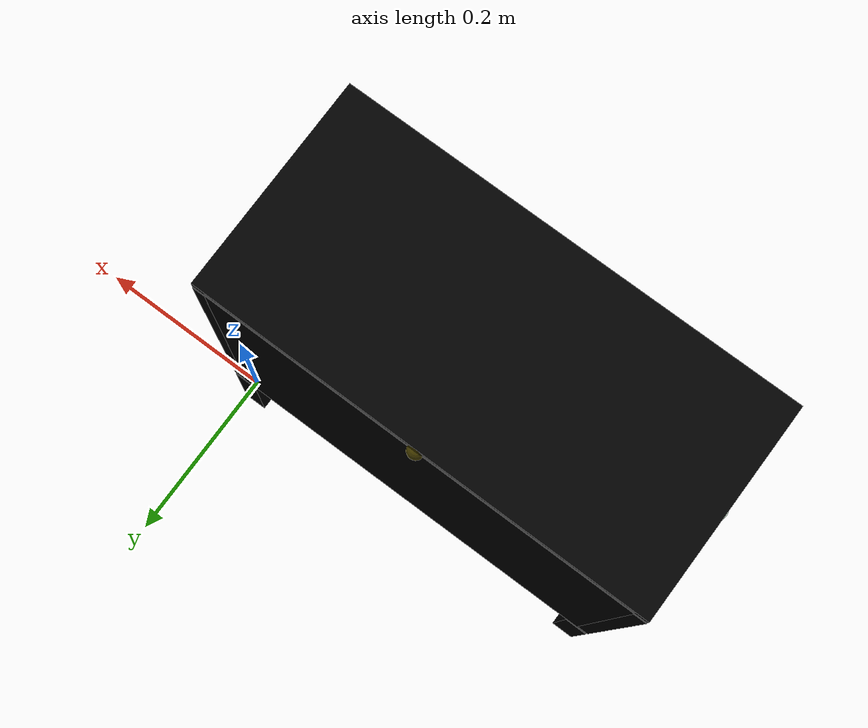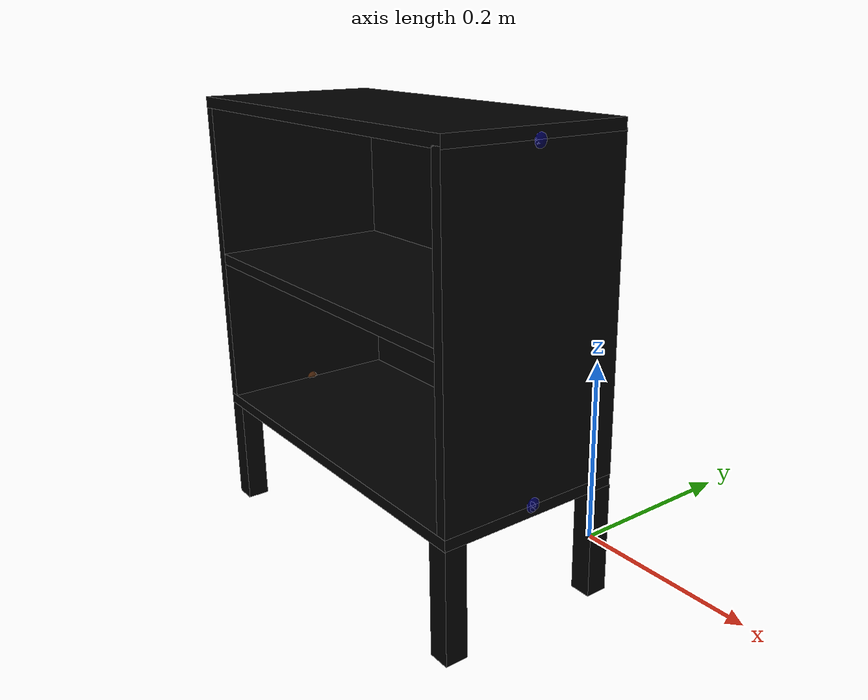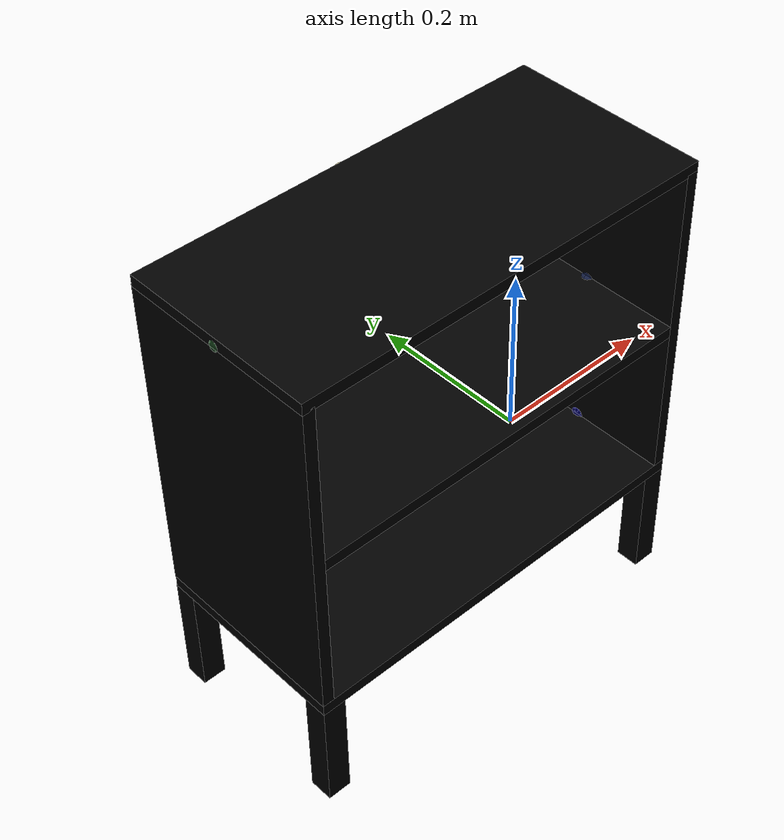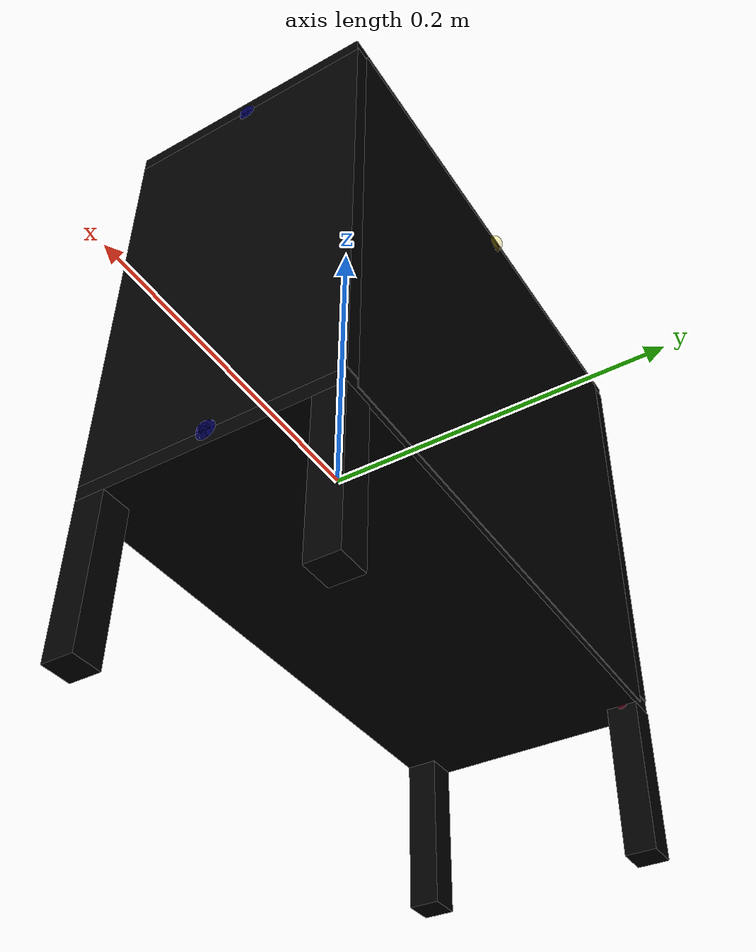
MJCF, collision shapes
<mujoco model="bookcase_agerum_0006">
  <custom>
    <numeric data="0.424249 0.27183 0.01267 0.707107 0.0 -0.707107 -0.0" name="0_part0_initpos" />
    <numeric data="0.065642 -0.058725 0.00626 0.0 1.0 0.0 0.0" name="9_part9_initpos" />
    <numeric data="-0.443256 0.052999 0.0063 0.707107 0.0 0.707107 0.0" name="8_part8_initpos" />
    <numeric data="0.521462 -0.055008 0.00632 -0.707107 -0.0 0.707107 -0.0" name="7_part7_initpos" />
    <numeric data="-0.430766 0.333003 0.00632 1.0 0.0 0.0 0.0" name="6_part6_initpos" />
    <numeric data="-0.454857 -0.310557 0.00156 0.0 0.0 -0.707107 -0.707107" name="5_part5_initpos" />
    <numeric data="0.058187 0.242598 0.0063 0.0 1.0 0.0 0.0" name="4_part4_initpos" />
    <numeric data="0.427126 0.340304 0.01267 -0.707107 0.0 0.707107 0.0" name="3_part3_initpos" />
    <numeric data="0.424231 0.179422 0.01267 0.707107 -0.0 -0.707107 0.0" name="2_part2_initpos" />
    <numeric data="0.424084 0.41124 0.01267 0.492237 -0.492237 -0.507644 0.507645" name="1_part1_initpos" />
  </custom>
  <asset>
    <mesh file="bookcase_agerum_0006/0.stl" name="part0" scale="0.0005 0.0005 0.0005" />
    <mesh file="bookcase_agerum_0006/9.stl" name="part9" scale="0.0005 0.0005 0.0005" />
    <mesh file="bookcase_agerum_0006/8.stl" name="part8" scale="0.0005 0.0005 0.0005" />
    <mesh file="bookcase_agerum_0006/7.stl" name="part7" scale="0.0005 0.0005 0.0005" />
    <mesh file="bookcase_agerum_0006/6.stl" name="part6" scale="0.0005 0.0005 0.0005" />
    <mesh file="bookcase_agerum_0006/5.stl" name="part5" scale="0.0005 0.0005 0.0005" />
    <mesh file="bookcase_agerum_0006/4.stl" name="part4" scale="0.0005 0.0005 0.0005" />
    <mesh file="bookcase_agerum_0006/3.stl" name="part3" scale="0.0005 0.0005 0.0005" />
    <mesh file="bookcase_agerum_0006/2.stl" name="part2" scale="0.0005 0.0005 0.0005" />
    <mesh file="bookcase_agerum_0006/1.stl" name="part1" scale="0.0005 0.0005 0.0005" />
  </asset>
  <equality>
    <weld active="false" body1="0_part0" body2="4_part4" solimp="1 1 0.5" solref="0.01 0.3" />
    <weld active="false" body1="9_part9" body2="8_part8" solimp="1 1 0.5" solref="0.01 0.3" />
    <weld active="false" body1="9_part9" body2="7_part7" solimp="1 1 0.5" solref="0.01 0.3" />
    <weld active="false" body1="9_part9" body2="5_part5" solimp="1 1 0.5" solref="0.01 0.3" />
    <weld active="false" body1="8_part8" body2="9_part9" solimp="1 1 0.5" solref="0.01 0.3" />
    <weld active="false" body1="8_part8" body2="6_part6" solimp="1 1 0.5" solref="0.01 0.3" />
    <weld active="false" body1="8_part8" body2="4_part4" solimp="1 1 0.5" solref="0.01 0.3" />
    <weld active="false" body1="7_part7" body2="6_part6" solimp="1 1 0.5" solref="0.01 0.3" />
    <weld active="false" body1="7_part7" body2="4_part4" solimp="1 1 0.5" solref="0.01 0.3" />
    <weld active="false" body1="6_part6" body2="5_part5" solimp="1 1 0.5" solref="0.01 0.3" />
    <weld active="false" body1="5_part5" body2="4_part4" solimp="1 1 0.5" solref="0.01 0.3" />
    <weld active="false" body1="4_part4" body2="3_part3" solimp="1 1 0.5" solref="0.01 0.3" />
    <weld active="false" body1="4_part4" body2="2_part2" solimp="1 1 0.5" solref="0.01 0.3" />
    <weld active="false" body1="4_part4" body2="1_part1" solimp="1 1 0.5" solref="0.01 0.3" />
  </equality>
  <worldbody>
    <body name="0_part0" pos="0.0 -5e-11 0.0" quat="1 0 0 0">
      <geom conaffinity="0" contype="0" density="0" mesh="part0" name="0_part0_mesh" pos="0.0 0.0 0.0" rgba="0.82 0.71 0.55 1" type="mesh" />
      <site name="0_part0_horizontal_radius_site" pos="0.0 -5e-11 0.0" quat="1 0 0 0" rgba="0 0 0 0" size="0.01" />
      <site name="0_part0_top_site" pos="0.0 -5e-11 0.0635" quat="1 0 0 0" rgba="0 0 0 0" size="0.01" />
      <site name="0_part0_bottom_site" pos="0.0 -5e-11 -0.0635" quat="1 0 0 0" rgba="0 0 0 0" size="0.01" />
      <site name="0_part0_corner_site8" pos="-0.012700000749999999 0.01270000355 0.0635" quat="1 0 0 0" rgba="0 0 0 0" size="0.008" />
      <site name="0_part0_corner_site7" pos="0.012700000749999999 0.01270000355 0.0635" quat="1 0 0 0" rgba="0 0 0 0" size="0.008" />
      <site name="0_part0_corner_site6" pos="0.012700000749999999 -0.0127000036 0.0635" quat="1 0 0 0" rgba="0 0 0 0" size="0.008" />
      <site name="0_part0_corner_site5" pos="-0.012700000749999999 -0.0127000036 0.0635" quat="1 0 0 0" rgba="0 0 0 0" size="0.008" />
      <site name="0_part0_corner_site4" pos="-0.012700000749999999 0.01270000355 -0.0635" quat="1 0 0 0" rgba="0 0 0 0" size="0.008" />
      <site name="0_part0_corner_site3" pos="0.012700000749999999 0.01270000355 -0.0635" quat="1 0 0 0" rgba="0 0 0 0" size="0.008" />
      <site name="0_part0_corner_site2" pos="0.012700000749999999 -0.0127000036 -0.0635" quat="1 0 0 0" rgba="0 0 0 0" size="0.008" />
      <site name="0_part0_corner_site1" pos="-0.012700000749999999 -0.0127000036 -0.0635" quat="1 0 0 0" rgba="0 0 0 0" size="0.008" />
      <geom density="50" name="noviz_collision_0_part0_0" pos="2E-05 0 0.00013" quat="1 0 0 0" rgba="0 0 0 0" size="0.01272 0.0127 0.06363" solref="0.001 1" type="box" />
      <site name="leg-floor,0,90,180,270,conn_site4" pos="0.0025 -0.0005 0.06479" quat="1 0 0 0" rgba="0.9019 0.0980 0.2941 0.3" size="0.008" />
    </body>
    <body name="9_part9" pos="-0.21589999635 -0.09524999645 0.43814999390000003" quat="1 0 0 0">
      <geom conaffinity="0" contype="0" density="0" mesh="part9" name="9_part9_mesh" pos="0.0 0.0 0.0" rgba="0.82 0.71 0.55 1" type="mesh" />
      <site name="9_part9_horizontal_radius_site" pos="3e-09 0.0 0.0" quat="1 0 0 0" rgba="0 0 0 0" size="0.01" />
      <site name="9_part9_top_site" pos="3e-09 0.0 0.0063500061" quat="1 0 0 0" rgba="0 0 0 0" size="0.01" />
      <site name="9_part9_bottom_site" pos="3e-09 0.0 -0.0063500061" quat="1 0 0 0" rgba="0 0 0 0" size="0.01" />
      <site name="9_part9_corner_site8" pos="-0.2286000001 0.10795 0.0063500061" quat="1 0 0 0" rgba="0 0 0 0" size="0.008" />
      <site name="9_part9_corner_site7" pos="0.2286000061 0.10795 0.0063500061" quat="1 0 0 0" rgba="0 0 0 0" size="0.008" />
      <site name="9_part9_corner_site6" pos="0.2286000061 -0.10795 0.0063500061" quat="1 0 0 0" rgba="0 0 0 0" size="0.008" />
      <site name="9_part9_corner_site5" pos="-0.2286000001 -0.10795 0.0063500061" quat="1 0 0 0" rgba="0 0 0 0" size="0.008" />
      <site name="9_part9_corner_site4" pos="-0.2286000001 0.10795 -0.0063500061" quat="1 0 0 0" rgba="0 0 0 0" size="0.008" />
      <site name="9_part9_corner_site3" pos="0.2286000061 0.10795 -0.0063500061" quat="1 0 0 0" rgba="0 0 0 0" size="0.008" />
      <site name="9_part9_corner_site2" pos="0.2286000061 -0.10795 -0.0063500061" quat="1 0 0 0" rgba="0 0 0 0" size="0.008" />
      <site name="9_part9_corner_site1" pos="-0.2286000001 -0.10795 -0.0063500061" quat="1 0 0 0" rgba="0 0 0 0" size="0.008" />
      <geom density="50" name="noviz_collision_9_part9_0" pos="0 -0.00036 -3E-05" quat="1 0 0 0" rgba="0 0 0 0" size="0.2286 0.10759 0.00632" solref="0.001 1" type="box" />
      <site name="top-leftwall,0,conn_site1" pos="-0.2228 0 -0.0037" quat="1 0 0 0" rgba="0.2352 0.7058 0.2941 0.3" size="0.008" />
      <site name="top-back,0,conn_site1" pos="0 0.10669 -0.00315" quat="1 0 0 0" rgba="1.0 0.8823 0.0980 0.3" size="0.008" />
      <site name="top-rightwall,0,180,conn_site1" pos="0.2219 0 -0.00715" quat="1 0 0 0" rgba="0 0 1 0.3" size="0.01" />
    </body>
    <body name="8_part8" pos="0.00635000055 -0.09524999645 0.2539999977" quat="1 0 0 0">
      <geom conaffinity="0" contype="0" density="0" mesh="part8" name="8_part8_mesh" pos="0.0 0.0 0.0" rgba="0.82 0.71 0.55 1" type="mesh" />
      <site name="8_part8_horizontal_radius_site" pos="-1e-10 0.0 -7.5e-10" quat="1 0 0 0" rgba="0 0 0 0" size="0.01" />
      <site name="8_part8_top_site" pos="-1e-10 0.0 0.17780000155" quat="1 0 0 0" rgba="0 0 0 0" size="0.01" />
      <site name="8_part8_bottom_site" pos="-1e-10 0.0 -0.17780000305" quat="1 0 0 0" rgba="0 0 0 0" size="0.01" />
      <site name="8_part8_corner_site8" pos="-0.0063500001 0.10795 0.17780000155" quat="1 0 0 0" rgba="0 0 0 0" size="0.008" />
      <site name="8_part8_corner_site7" pos="0.0063499999 0.10795 0.17780000155" quat="1 0 0 0" rgba="0 0 0 0" size="0.008" />
      <site name="8_part8_corner_site6" pos="0.0063499999 -0.10795 0.17780000155" quat="1 0 0 0" rgba="0 0 0 0" size="0.008" />
      <site name="8_part8_corner_site5" pos="-0.0063500001 -0.10795 0.17780000155" quat="1 0 0 0" rgba="0 0 0 0" size="0.008" />
      <site name="8_part8_corner_site4" pos="-0.0063500001 0.10795 -0.17780000305" quat="1 0 0 0" rgba="0 0 0 0" size="0.008" />
      <site name="8_part8_corner_site3" pos="0.0063499999 0.10795 -0.17780000305" quat="1 0 0 0" rgba="0 0 0 0" size="0.008" />
      <site name="8_part8_corner_site2" pos="0.0063499999 -0.10795 -0.17780000305" quat="1 0 0 0" rgba="0 0 0 0" size="0.008" />
      <site name="8_part8_corner_site1" pos="-0.0063500001 -0.10795 -0.17780000305" quat="1 0 0 0" rgba="0 0 0 0" size="0.008" />
      <geom density="50" name="noviz_collision_8_part8_0" pos="-1E-05 1E-05 0.00126" quat="1 0 0 0" rgba="0 0 0 0" size="0.00634 0.10796 0.17906" solref="0.001 1" type="box" />
      <site name="rightwall-shelf,0,conn_site1" pos="-0.00637 -0.00079 0.00135" quat="0.7071067 0 0.7071068 0" rgba="0.2627 0.3882 0.8470 0.3" size="0.008" />
      <site name="rightwall-top,0,180,conn_site1" pos="-0.00035 0 0.177" quat="1 0 0 0" rgba="0 0 1 0.3" size="0.01" />
      <site name="rightwall-floor,0,180,conn_site1" pos="0.00065 0 -0.1778" quat="1 0 0 0" rgba="0 0 1 0.3" size="0.01" />
    </body>
    <body name="7_part7" pos="-0.4381499995 -0.09524999645 0.2539999977" quat="1 0 0 0">
      <geom conaffinity="0" contype="0" density="0" mesh="part7" name="7_part7_mesh" pos="0.0 0.0 0.0" rgba="0.82 0.71 0.55 1" type="mesh" />
      <site name="7_part7_horizontal_radius_site" pos="0.0 0.0 -7.5e-10" quat="1 0 0 0" rgba="0 0 0 0" size="0.01" />
      <site name="7_part7_top_site" pos="0.0 0.0 0.17780000155" quat="1 0 0 0" rgba="0 0 0 0" size="0.01" />
      <site name="7_part7_bottom_site" pos="0.0 0.0 -0.17780000305" quat="1 0 0 0" rgba="0 0 0 0" size="0.01" />
      <site name="7_part7_corner_site8" pos="-0.00635 0.10795 0.17780000155" quat="1 0 0 0" rgba="0 0 0 0" size="0.008" />
      <site name="7_part7_corner_site7" pos="0.00635 0.10795 0.17780000155" quat="1 0 0 0" rgba="0 0 0 0" size="0.008" />
      <site name="7_part7_corner_site6" pos="0.00635 -0.10795 0.17780000155" quat="1 0 0 0" rgba="0 0 0 0" size="0.008" />
      <site name="7_part7_corner_site5" pos="-0.00635 -0.10795 0.17780000155" quat="1 0 0 0" rgba="0 0 0 0" size="0.008" />
      <site name="7_part7_corner_site4" pos="-0.00635 0.10795 -0.17780000305" quat="1 0 0 0" rgba="0 0 0 0" size="0.008" />
      <site name="7_part7_corner_site3" pos="0.00635 0.10795 -0.17780000305" quat="1 0 0 0" rgba="0 0 0 0" size="0.008" />
      <site name="7_part7_corner_site2" pos="0.00635 -0.10795 -0.17780000305" quat="1 0 0 0" rgba="0 0 0 0" size="0.008" />
      <site name="7_part7_corner_site1" pos="-0.00635 -0.10795 -0.17780000305" quat="1 0 0 0" rgba="0 0 0 0" size="0.008" />
      <geom density="50" name="noviz_collision_7_part7_0" pos="1E-05 1E-05 0.00126" quat="1 0 0 0" rgba="0 0 0 0" size="0.00636 0.10796 0.17906" solref="0.001 1" type="box" />
      <site name="leftwall-floor,0,conn_site1" pos="0.00195 0 -0.1778" quat="1 0 0 0" rgba="0.9607 0.5098 0.1921 0.3" size="0.008" />
      <site name="leftwall-shelf,0,conn_site1" pos="0.00505 -0.00079 -0.0039" quat="0.7071067 0 -0.7071068 0" rgba="0.5686 0.1176 0.7058 0.3" size="0.008" />
      <site name="leftwall-top,0,conn_site1" pos="-0.00055 0 0.18045" quat="1 0 0 0" rgba="0.2352 0.7058 0.2941 0.3" size="0.008" />
    </body>
    <body name="6_part6" pos="-0.21590000155000003 -0.09683749645 0.254" quat="1 0 0 0">
      <geom conaffinity="0" contype="0" density="0" mesh="part6" name="6_part6_mesh" pos="0.0 0.0 0.0" rgba="0.82 0.71 0.55 1" type="mesh" />
      <site name="6_part6_horizontal_radius_site" pos="0.0 0.0 0.0" quat="1 0 0 0" rgba="0 0 0 0" size="0.01" />
      <site name="6_part6_top_site" pos="0.0 0.0 0.0063500061" quat="1 0 0 0" rgba="0 0 0 0" size="0.01" />
      <site name="6_part6_bottom_site" pos="0.0 0.0 -0.0063500061" quat="1 0 0 0" rgba="0 0 0 0" size="0.01" />
      <site name="6_part6_corner_site8" pos="-0.21590000915 0.1063625 0.0063500061" quat="1 0 0 0" rgba="0 0 0 0" size="0.008" />
      <site name="6_part6_corner_site7" pos="0.21590000915 0.1063625 0.0063500061" quat="1 0 0 0" rgba="0 0 0 0" size="0.008" />
      <site name="6_part6_corner_site6" pos="0.21590000915 -0.1063625 0.0063500061" quat="1 0 0 0" rgba="0 0 0 0" size="0.008" />
      <site name="6_part6_corner_site5" pos="-0.21590000915 -0.1063625 0.0063500061" quat="1 0 0 0" rgba="0 0 0 0" size="0.008" />
      <site name="6_part6_corner_site4" pos="-0.21590000915 0.1063625 -0.0063500061" quat="1 0 0 0" rgba="0 0 0 0" size="0.008" />
      <site name="6_part6_corner_site3" pos="0.21590000915 0.1063625 -0.0063500061" quat="1 0 0 0" rgba="0 0 0 0" size="0.008" />
      <site name="6_part6_corner_site2" pos="0.21590000915 -0.1063625 -0.0063500061" quat="1 0 0 0" rgba="0 0 0 0" size="0.008" />
      <site name="6_part6_corner_site1" pos="-0.21590000915 -0.1063625 -0.0063500061" quat="1 0 0 0" rgba="0 0 0 0" size="0.008" />
      <geom density="50" name="noviz_collision_6_part6_0" pos="0 6E-05 0" quat="1 0 0 0" rgba="0 0 0 0" size="0.2159 0.10642 0.00635" solref="0.001 1" type="box" />
      <site name="shelf-leftwall,0,conn_site1" pos="-0.2172 0.00079 -0.0039" quat="0.7071067 0 -0.7071068 0" rgba="0.5686 0.1176 0.7058 0.3" size="0.008" />
      <site name="shelf-rightwall,0,conn_site1" pos="0.21588 0.00079 0.00135" quat="0.7071067 0 0.7071068 0" rgba="0.2627 0.3882 0.8470 0.3" size="0.008" />
    </body>
    <body name="5_part5" pos="-0.21590000155000003 0.0111125031 0.254" quat="1 0 0 0">
      <geom conaffinity="0" contype="0" density="0" mesh="part5" name="5_part5_mesh" pos="0.0 0.0 0.0" rgba="0.82 0.71 0.55 1" type="mesh" />
      <site name="5_part5_horizontal_radius_site" pos="0.0 0.0 -0.0" quat="1 0 0 0" rgba="0 0 0 0" size="0.01" />
      <site name="5_part5_top_site" pos="0.0 0.0 0.18415" quat="1 0 0 0" rgba="0 0 0 0" size="0.01" />
      <site name="5_part5_bottom_site" pos="0.0 0.0 -0.18415" quat="1 0 0 0" rgba="0 0 0 0" size="0.01" />
      <site name="5_part5_corner_site8" pos="-0.21590000915 0.0015875005 0.18415" quat="1 0 0 0" rgba="0 0 0 0" size="0.008" />
      <site name="5_part5_corner_site7" pos="0.21590000915 0.0015875005 0.18415" quat="1 0 0 0" rgba="0 0 0 0" size="0.008" />
      <site name="5_part5_corner_site6" pos="0.21590000915 -0.00158750045 0.18415" quat="1 0 0 0" rgba="0 0 0 0" size="0.008" />
      <site name="5_part5_corner_site5" pos="-0.21590000915 -0.00158750045 0.18415" quat="1 0 0 0" rgba="0 0 0 0" size="0.008" />
      <site name="5_part5_corner_site4" pos="-0.21590000915 0.0015875005 -0.18415" quat="1 0 0 0" rgba="0 0 0 0" size="0.008" />
      <site name="5_part5_corner_site3" pos="0.21590000915 0.0015875005 -0.18415" quat="1 0 0 0" rgba="0 0 0 0" size="0.008" />
      <site name="5_part5_corner_site2" pos="0.21590000915 -0.00158750045 -0.18415" quat="1 0 0 0" rgba="0 0 0 0" size="0.008" />
      <site name="5_part5_corner_site1" pos="-0.21590000915 -0.00158750045 -0.18415" quat="1 0 0 0" rgba="0 0 0 0" size="0.008" />
      <geom density="50" name="noviz_collision_5_part5_0" pos="0 0 0" quat="1 0 0 0" rgba="0 0 0 0" size="0.2159 0.00159 0.18415" solref="0.001 1" type="box" />
      <site name="back-top,0,conn_site1" pos="0 0.00033 0.181" quat="1 0 0 0" rgba="1.0 0.8823 0.0980 0.3" size="0.008" />
    </body>
    <body name="4_part4" pos="-0.21589999635 -0.09524999645 0.06985" quat="1 0 0 0">
      <geom conaffinity="0" contype="0" density="0" mesh="part4" name="4_part4_mesh" pos="0.0 0.0 0.0" rgba="0.82 0.71 0.55 1" type="mesh" />
      <site name="4_part4_horizontal_radius_site" pos="3e-09 0.0 -0.0" quat="1 0 0 0" rgba="0 0 0 0" size="0.01" />
      <site name="4_part4_top_site" pos="3e-09 0.0 0.00635" quat="1 0 0 0" rgba="0 0 0 0" size="0.01" />
      <site name="4_part4_bottom_site" pos="3e-09 0.0 -0.00635" quat="1 0 0 0" rgba="0 0 0 0" size="0.01" />
      <site name="4_part4_corner_site8" pos="-0.2286000001 0.10795 0.00635" quat="1 0 0 0" rgba="0 0 0 0" size="0.008" />
      <site name="4_part4_corner_site7" pos="0.2286000061 0.10795 0.00635" quat="1 0 0 0" rgba="0 0 0 0" size="0.008" />
      <site name="4_part4_corner_site6" pos="0.2286000061 -0.10795 0.00635" quat="1 0 0 0" rgba="0 0 0 0" size="0.008" />
      <site name="4_part4_corner_site5" pos="-0.2286000001 -0.10795 0.00635" quat="1 0 0 0" rgba="0 0 0 0" size="0.008" />
      <site name="4_part4_corner_site4" pos="-0.2286000001 0.10795 -0.00635" quat="1 0 0 0" rgba="0 0 0 0" size="0.008" />
      <site name="4_part4_corner_site3" pos="0.2286000061 0.10795 -0.00635" quat="1 0 0 0" rgba="0 0 0 0" size="0.008" />
      <site name="4_part4_corner_site2" pos="0.2286000061 -0.10795 -0.00635" quat="1 0 0 0" rgba="0 0 0 0" size="0.008" />
      <site name="4_part4_corner_site1" pos="-0.2286000001 -0.10795 -0.00635" quat="1 0 0 0" rgba="0 0 0 0" size="0.008" />
      <geom density="50" name="noviz_collision_4_part4_0" pos="0 -0.00036 -1E-05" quat="1 0 0 0" rgba="0 0 0 0" size="0.2286 0.10759 0.00634" solref="0.001 1" type="box" />
      <site name="floor-leg,0,90,180,270,conn_site4" pos="-0.2181 -0.09465 -0.00506" quat="1 0 0 0" rgba="0.9019 0.0980 0.2941 0.3" size="0.01" />
      <site name="floor-leg,0,90,180,270,conn_site3" pos="0.2184 -0.09465 -0.00506" quat="1 0 0 0" rgba="0.9019 0.0980 0.2941 0.3" size="0.01" />
      <site name="floor-leg,0,90,180,270,conn_site2" pos="0.2184 0.09475 -0.00506" quat="1 0 0 0" rgba="0.9019 0.0980 0.2941 0.3" size="0.01" />
      <site name="floor-leg,0,90,180,270,conn_site1" pos="-0.2122 0.09596 -0.00506" quat="1 0 0 0" rgba="0.9019 0.0980 0.2941 0.3" size="0.01" />
      <site name="floor-leftwall,0,conn_site1" pos="-0.2203 0 0.00635" quat="1 0 0 0" rgba="0.9607 0.5098 0.1921 0.3" size="0.008" />
      <site name="floor-rightwall,0,180,conn_site1" pos="0.2229 0 0.00635" quat="1 0 0 0" rgba="0 0 1 0.3" size="0.01" />
    </body>
    <body name="3_part3" pos="-0.43179999695 -0.1904999879 0.0" quat="1 0 0 0">
      <geom conaffinity="0" contype="0" density="0" mesh="part3" name="3_part3_mesh" pos="0.0 0.0 0.0" rgba="0.82 0.71 0.55 1" type="mesh" />
      <site name="3_part3_horizontal_radius_site" pos="1.5e-10 -1.5e-10 0.0" quat="1 0 0 0" rgba="0 0 0 0" size="0.01" />
      <site name="3_part3_top_site" pos="1e-10 -1e-10 0.0635" quat="1 0 0 0" rgba="0 0 0 0" size="0.01" />
      <site name="3_part3_bottom_site" pos="1e-10 -1e-10 -0.0635" quat="1 0 0 0" rgba="0 0 0 0" size="0.01" />
      <site name="3_part3_corner_site8" pos="-0.0127000024 0.0127000084 0.0635" quat="1 0 0 0" rgba="0 0 0 0" size="0.008" />
      <site name="3_part3_corner_site7" pos="0.01270000265 0.0127000084 0.0635" quat="1 0 0 0" rgba="0 0 0 0" size="0.008" />
      <site name="3_part3_corner_site6" pos="0.01270000265 -0.012700008649999999 0.0635" quat="1 0 0 0" rgba="0 0 0 0" size="0.008" />
      <site name="3_part3_corner_site5" pos="-0.0127000024 -0.012700008649999999 0.0635" quat="1 0 0 0" rgba="0 0 0 0" size="0.008" />
      <site name="3_part3_corner_site4" pos="-0.0127000024 0.0127000084 -0.0635" quat="1 0 0 0" rgba="0 0 0 0" size="0.008" />
      <site name="3_part3_corner_site3" pos="0.01270000265 0.0127000084 -0.0635" quat="1 0 0 0" rgba="0 0 0 0" size="0.008" />
      <site name="3_part3_corner_site2" pos="0.01270000265 -0.012700008649999999 -0.0635" quat="1 0 0 0" rgba="0 0 0 0" size="0.008" />
      <site name="3_part3_corner_site1" pos="-0.0127000024 -0.012700008649999999 -0.0635" quat="1 0 0 0" rgba="0 0 0 0" size="0.008" />
      <geom density="50" name="noviz_collision_3_part3_0" pos="-2E-05 0 0.00013" quat="1 0 0 0" rgba="0 0 0 0" size="0.01268 0.0127 0.06363" solref="0.001 1" type="box" />
      <site name="leg-floor,0,90,180,270,conn_site6" pos="-0.0022 0.0006 0.06479" quat="1 0 0 0" rgba="0.9019 0.0980 0.2941 0.3" size="0.008" />
    </body>
    <body name="2_part2" pos="-0.43179999695 -5e-11 0.0" quat="1 0 0 0">
      <geom conaffinity="0" contype="0" density="0" mesh="part2" name="2_part2_mesh" pos="0.0 0.0 0.0" rgba="0.82 0.71 0.55 1" type="mesh" />
      <site name="2_part2_horizontal_radius_site" pos="1.5e-10 -5e-11 0.0" quat="1 0 0 0" rgba="0 0 0 0" size="0.01" />
      <site name="2_part2_top_site" pos="1e-10 -5e-11 0.0635" quat="1 0 0 0" rgba="0 0 0 0" size="0.01" />
      <site name="2_part2_bottom_site" pos="1e-10 -5e-11 -0.0635" quat="1 0 0 0" rgba="0 0 0 0" size="0.01" />
      <site name="2_part2_corner_site8" pos="-0.0127000024 0.01270000355 0.0635" quat="1 0 0 0" rgba="0 0 0 0" size="0.008" />
      <site name="2_part2_corner_site7" pos="0.01270000265 0.01270000355 0.0635" quat="1 0 0 0" rgba="0 0 0 0" size="0.008" />
      <site name="2_part2_corner_site6" pos="0.01270000265 -0.0127000036 0.0635" quat="1 0 0 0" rgba="0 0 0 0" size="0.008" />
      <site name="2_part2_corner_site5" pos="-0.0127000024 -0.0127000036 0.0635" quat="1 0 0 0" rgba="0 0 0 0" size="0.008" />
      <site name="2_part2_corner_site4" pos="-0.0127000024 0.01270000355 -0.0635" quat="1 0 0 0" rgba="0 0 0 0" size="0.008" />
      <site name="2_part2_corner_site3" pos="0.01270000265 0.01270000355 -0.0635" quat="1 0 0 0" rgba="0 0 0 0" size="0.008" />
      <site name="2_part2_corner_site2" pos="0.01270000265 -0.0127000036 -0.0635" quat="1 0 0 0" rgba="0 0 0 0" size="0.008" />
      <site name="2_part2_corner_site1" pos="-0.0127000024 -0.0127000036 -0.0635" quat="1 0 0 0" rgba="0 0 0 0" size="0.008" />
      <geom density="50" name="noviz_collision_2_part2_0" pos="-2E-05 0 0.00013" quat="1 0 0 0" rgba="0 0 0 0" size="0.01268 0.0127 0.06363" solref="0.001 1" type="box" />
      <site name="leg-floor,0,90,180,270,conn_site3" pos="0.0037 0.00071 0.06479" quat="1 0 0 0" rgba="0.9019 0.0980 0.2941 0.3" size="0.008" />
    </body>
    <body name="1_part1" pos="0.0 -0.1904999879 0.0" quat="1 0 0 0">
      <geom conaffinity="0" contype="0" density="0" mesh="part1" name="1_part1_mesh" pos="0.0 0.0 0.0" rgba="0.82 0.71 0.55 1" type="mesh" />
      <site name="1_part1_horizontal_radius_site" pos="0.0 -1.5e-10 0.0" quat="1 0 0 0" rgba="0 0 0 0" size="0.01" />
      <site name="1_part1_top_site" pos="0.0 -1e-10 0.0635" quat="1 0 0 0" rgba="0 0 0 0" size="0.01" />
      <site name="1_part1_bottom_site" pos="0.0 -1e-10 -0.0635" quat="1 0 0 0" rgba="0 0 0 0" size="0.01" />
      <site name="1_part1_corner_site8" pos="-0.012700000749999999 0.0127000084 0.0635" quat="1 0 0 0" rgba="0 0 0 0" size="0.008" />
      <site name="1_part1_corner_site7" pos="0.012700000749999999 0.0127000084 0.0635" quat="1 0 0 0" rgba="0 0 0 0" size="0.008" />
      <site name="1_part1_corner_site6" pos="0.012700000749999999 -0.012700008649999999 0.0635" quat="1 0 0 0" rgba="0 0 0 0" size="0.008" />
      <site name="1_part1_corner_site5" pos="-0.012700000749999999 -0.012700008649999999 0.0635" quat="1 0 0 0" rgba="0 0 0 0" size="0.008" />
      <site name="1_part1_corner_site4" pos="-0.012700000749999999 0.0127000084 -0.0635" quat="1 0 0 0" rgba="0 0 0 0" size="0.008" />
      <site name="1_part1_corner_site3" pos="0.012700000749999999 0.0127000084 -0.0635" quat="1 0 0 0" rgba="0 0 0 0" size="0.008" />
      <site name="1_part1_corner_site2" pos="0.012700000749999999 -0.012700008649999999 -0.0635" quat="1 0 0 0" rgba="0 0 0 0" size="0.008" />
      <site name="1_part1_corner_site1" pos="-0.012700000749999999 -0.012700008649999999 -0.0635" quat="1 0 0 0" rgba="0 0 0 0" size="0.008" />
      <geom density="50" name="noviz_collision_1_part1_0" pos="2E-05 0 0.00013" quat="1 0 0 0" rgba="0 0 0 0" size="0.01272 0.0127 0.06363" solref="0.001 1" type="box" />
      <site name="leg-floor,0,90,180,270,conn_site5" pos="0.0025 0.0006 0.06479" quat="1 0 0 0" rgba="0.9019 0.0980 0.2941 0.3" size="0.008" />
    </body>
  </worldbody>
<actuator /><sensor /><contact /><default /></mujoco>
